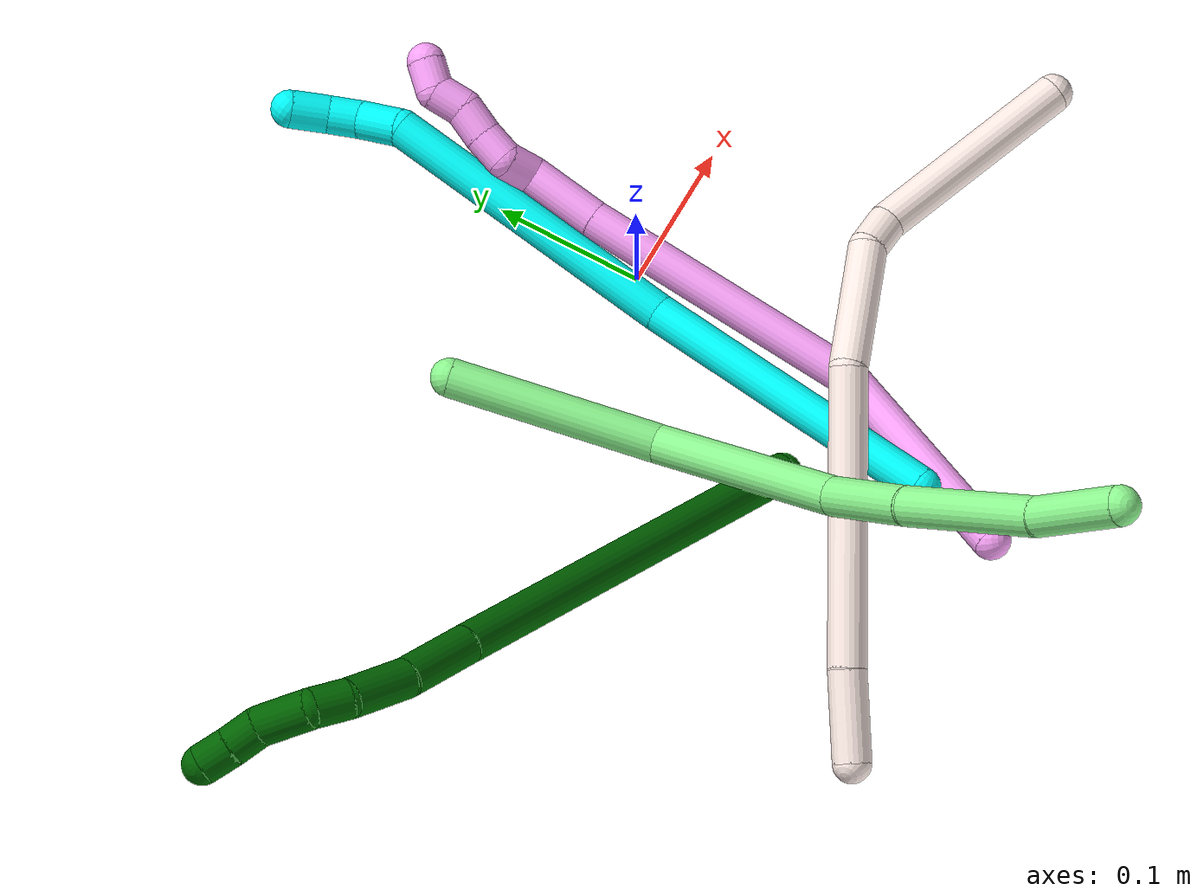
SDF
<sdf version="1.7">
 <world name="default">
  <model name="3">
   <static>0</static>
   <link name="3">
    <collision name="collision-cylinder-e_1_1_4">
     <pose>0.01929 0.104267 -0.011193 -1.67774 0.181916 -0.202357</pose>
     <geometry><cylinder><radius>0.0125</radius><length>0.213251</length></cylinder></geometry>
     <surface>
      <friction><ode><mu>1.16</mu><mu2>1.16</mu2><slip1>0</slip1><slip2>0</slip2></ode></friction>
      <contact><ode><kp>1e+06</kp><kd>1</kd><max_vel>0</max_vel><min_depth>0.001</min_depth></ode></contact>
     </surface>
    </collision>
    <visual name="visual-cylinder-e_1_1_4">
     <pose>0.01929 0.104267 -0.011193 -1.67774 0.181916 -0.202357</pose>
     <geometry><cylinder><radius>0.0125</radius><length>0.213251</length></cylinder></geometry>
     <material><ambient>0.003922 1 0.996078 1</ambient></material>
    </visual>
    <collision name="collision-cylinder-e_2_4_5">
     <pose>0.037078 0.312505 -0.025284 -1.59866 -0.014441 0.014849</pose>
     <geometry><cylinder><radius>0.0125</radius><length>0.208045</length></cylinder></geometry>
     <surface>
      <friction><ode><mu>1.16</mu><mu2>1.16</mu2><slip1>0</slip1><slip2>0</slip2></ode></friction>
      <contact><ode><kp>1e+06</kp><kd>1</kd><max_vel>0</max_vel><min_depth>0.001</min_depth></ode></contact>
     </surface>
    </collision>
    <visual name="visual-cylinder-e_2_4_5">
     <pose>0.037078 0.312505 -0.025284 -1.59866 -0.014441 0.014849</pose>
     <geometry><cylinder><radius>0.0125</radius><length>0.208045</length></cylinder></geometry>
     <material><ambient>0.003922 1 0.996078 1</ambient></material>
    </visual>
    <collision name="collision-cylinder-e_3_5_6">
     <pose>0.038965 0.430063 -0.034853 -2.02721 0.220259 -0.351298</pose>
     <geometry><cylinder><radius>0.0125</radius><length>0.031021</length></cylinder></geometry>
     <surface>
      <friction><ode><mu>1.16</mu><mu2>1.16</mu2><slip1>0</slip1><slip2>0</slip2></ode></friction>
      <contact><ode><kp>1e+06</kp><kd>1</kd><max_vel>0</max_vel><min_depth>0.001</min_depth></ode></contact>
     </surface>
    </collision>
    <visual name="visual-cylinder-e_3_5_6">
     <pose>0.038965 0.430063 -0.034853 -2.02721 0.220259 -0.351298</pose>
     <geometry><cylinder><radius>0.0125</radius><length>0.031021</length></cylinder></geometry>
     <material><ambient>0.003922 1 0.996078 1</ambient></material>
    </visual>
    <collision name="collision-cylinder-e_4_6_7">
     <pose>0.040434 0.453325 -0.046403 -2.03785 -0.175354 0.283626</pose>
     <geometry><cylinder><radius>0.0125</radius><length>0.022011</length></cylinder></geometry>
     <surface>
      <friction><ode><mu>1.16</mu><mu2>1.16</mu2><slip1>0</slip1><slip2>0</slip2></ode></friction>
      <contact><ode><kp>1e+06</kp><kd>1</kd><max_vel>0</max_vel><min_depth>0.001</min_depth></ode></contact>
     </surface>
    </collision>
    <visual name="visual-cylinder-e_4_6_7">
     <pose>0.040434 0.453325 -0.046403 -2.03785 -0.175354 0.283626</pose>
     <geometry><cylinder><radius>0.0125</radius><length>0.022011</length></cylinder></geometry>
     <material><ambient>0.003922 1 0.996078 1</ambient></material>
    </visual>
    <collision name="collision-cylinder-e_5_7_2">
     <pose>0.032891 0.473323 -0.056441 -2.03425 -0.453443 0.714346</pose>
     <geometry><cylinder><radius>0.0125</radius><length>0.025672</length></cylinder></geometry>
     <surface>
      <friction><ode><mu>1.16</mu><mu2>1.16</mu2><slip1>0</slip1><slip2>0</slip2></ode></friction>
      <contact><ode><kp>1e+06</kp><kd>1</kd><max_vel>0</max_vel><min_depth>0.001</min_depth></ode></contact>
     </surface>
    </collision>
    <visual name="visual-cylinder-e_5_7_2">
     <pose>0.032891 0.473323 -0.056441 -2.03425 -0.453443 0.714346</pose>
     <geometry><cylinder><radius>0.0125</radius><length>0.025672</length></cylinder></geometry>
     <material><ambient>0.003922 1 0.996078 1</ambient></material>
    </visual>
    <collision name="collision-sphere-2">
     <pose>0.027268 0.483645 -0.061599 0 -0 0</pose>
     <geometry><sphere><radius>0.0125</radius></sphere></geometry>
     <surface>
      <friction><ode><mu>1.16</mu><mu2>1.16</mu2><slip1>0</slip1><slip2>0</slip2></ode></friction>
      <contact><ode><kp>1e+06</kp><kd>1</kd><max_vel>0</max_vel><min_depth>0.001</min_depth></ode></contact>
     </surface>
    </collision>
    <visual name="visual-sphere-2">
     <pose>0.027268 0.483645 -0.061599 0 -0 0</pose>
     <geometry><sphere><radius>0.0125</radius></sphere></geometry>
     <material><ambient>0.003922 1 0.996078 1</ambient></material>
    </visual>
    <collision name="collision-sphere-7">
     <pose>0.038514 0.463001 -0.051282 0 -0 0</pose>
     <geometry><sphere><radius>0.0125</radius></sphere></geometry>
     <surface>
      <friction><ode><mu>1.16</mu><mu2>1.16</mu2><slip1>0</slip1><slip2>0</slip2></ode></friction>
      <contact><ode><kp>1e+06</kp><kd>1</kd><max_vel>0</max_vel><min_depth>0.001</min_depth></ode></contact>
     </surface>
    </collision>
    <visual name="visual-sphere-7">
     <pose>0.038514 0.463001 -0.051282 0 -0 0</pose>
     <geometry><sphere><radius>0.0125</radius></sphere></geometry>
     <material><ambient>0.003922 1 0.996078 1</ambient></material>
    </visual>
    <collision name="collision-sphere-6">
     <pose>0.042354 0.443649 -0.041524 0 -0 0</pose>
     <geometry><sphere><radius>0.0125</radius></sphere></geometry>
     <surface>
      <friction><ode><mu>1.16</mu><mu2>1.16</mu2><slip1>0</slip1><slip2>0</slip2></ode></friction>
      <contact><ode><kp>1e+06</kp><kd>1</kd><max_vel>0</max_vel><min_depth>0.001</min_depth></ode></contact>
     </surface>
    </collision>
    <visual name="visual-sphere-6">
     <pose>0.042354 0.443649 -0.041524 0 -0 0</pose>
     <geometry><sphere><radius>0.0125</radius></sphere></geometry>
     <material><ambient>0.003922 1 0.996078 1</ambient></material>
    </visual>
    <collision name="collision-sphere-5">
     <pose>0.035576 0.416476 -0.028182 0 -0 0</pose>
     <geometry><sphere><radius>0.0125</radius></sphere></geometry>
     <surface>
      <friction><ode><mu>1.16</mu><mu2>1.16</mu2><slip1>0</slip1><slip2>0</slip2></ode></friction>
      <contact><ode><kp>1e+06</kp><kd>1</kd><max_vel>0</max_vel><min_depth>0.001</min_depth></ode></contact>
     </surface>
    </collision>
    <visual name="visual-sphere-5">
     <pose>0.035576 0.416476 -0.028182 0 -0 0</pose>
     <geometry><sphere><radius>0.0125</radius></sphere></geometry>
     <material><ambient>0.003922 1 0.996078 1</ambient></material>
    </visual>
    <collision name="collision-sphere-1">
     <geometry><sphere><radius>0.0125</radius></sphere></geometry>
     <surface>
      <friction><ode><mu>1.16</mu><mu2>1.16</mu2><slip1>0</slip1><slip2>0</slip2></ode></friction>
      <contact><ode><kp>1e+06</kp><kd>1</kd><max_vel>0</max_vel><min_depth>0.001</min_depth></ode></contact>
     </surface>
    </collision>
    <visual name="visual-sphere-1">
     <geometry><sphere><radius>0.0125</radius></sphere></geometry>
     <material><ambient>0.003922 1 0.996078 1</ambient></material>
    </visual>
    <collision name="collision-sphere-4">
     <pose>0.03858 0.208534 -0.022386 0 -0 0</pose>
     <geometry><sphere><radius>0.0125</radius></sphere></geometry>
     <surface>
      <friction><ode><mu>1.16</mu><mu2>1.16</mu2><slip1>0</slip1><slip2>0</slip2></ode></friction>
      <contact><ode><kp>1e+06</kp><kd>1</kd><max_vel>0</max_vel><min_depth>0.001</min_depth></ode></contact>
     </surface>
    </collision>
    <visual name="visual-sphere-4">
     <pose>0.03858 0.208534 -0.022386 0 -0 0</pose>
     <geometry><sphere><radius>0.0125</radius></sphere></geometry>
     <material><ambient>0.003922 1 0.996078 1</ambient></material>
    </visual>
    <inertial>
     <pose>0.029541 0.245441 -0.022397 0 -0 0</pose>
     <mass>0.5</mass>
     <inertia>
      <ixx>0.001404</ixx>
      <ixy>0</ixy>
      <ixz>0</ixz>
      <iyy>-0.000191</iyy>
      <iyz>0</iyz>
      <izz>-0.001704</izz>
     </inertia>
    </inertial>
   </link>
   <pose>-0.053537 -0.234466 0.04389 0.112593 1.02831 -0.070481</pose>
  </model>
  <model name="4">
   <static>0</static>
   <link name="4">
    <collision name="collision-cylinder-e_1_1_4">
     <pose>0.027545 0.04529 -0.052642 -2.43113 0.377623 -0.951322</pose>
     <geometry><cylinder><radius>0.0125</radius><length>0.149413</length></cylinder></geometry>
     <surface>
      <friction><ode><mu>1.16</mu><mu2>1.16</mu2><slip1>0</slip1><slip2>0</slip2></ode></friction>
      <contact><ode><kp>1e+06</kp><kd>1</kd><max_vel>0</max_vel><min_depth>0.001</min_depth></ode></contact>
     </surface>
    </collision>
    <visual name="visual-cylinder-e_1_1_4">
     <pose>0.027545 0.04529 -0.052642 -2.43113 0.377623 -0.951322</pose>
     <geometry><cylinder><radius>0.0125</radius><length>0.149413</length></cylinder></geometry>
     <material><ambient>1 0.65098 0.996078 1</ambient></material>
    </visual>
    <collision name="collision-cylinder-e_2_4_5">
     <pose>0.051289 0.155846 -0.177103 -2.40395 -0.039154 0.101228</pose>
     <geometry><cylinder><radius>0.0125</radius><length>0.194238</length></cylinder></geometry>
     <surface>
      <friction><ode><mu>1.16</mu><mu2>1.16</mu2><slip1>0</slip1><slip2>0</slip2></ode></friction>
      <contact><ode><kp>1e+06</kp><kd>1</kd><max_vel>0</max_vel><min_depth>0.001</min_depth></ode></contact>
     </surface>
    </collision>
    <visual name="visual-cylinder-e_2_4_5">
     <pose>0.051289 0.155846 -0.177103 -2.40395 -0.039154 0.101228</pose>
     <geometry><cylinder><radius>0.0125</radius><length>0.194238</length></cylinder></geometry>
     <material><ambient>1 0.65098 0.996078 1</ambient></material>
    </visual>
    <collision name="collision-cylinder-e_3_5_6">
     <pose>0.047743 0.238784 -0.266697 -2.35914 0.010196 -0.024717</pose>
     <geometry><cylinder><radius>0.0125</radius><length>0.050132</length></cylinder></geometry>
     <surface>
      <friction><ode><mu>1.16</mu><mu2>1.16</mu2><slip1>0</slip1><slip2>0</slip2></ode></friction>
      <contact><ode><kp>1e+06</kp><kd>1</kd><max_vel>0</max_vel><min_depth>0.001</min_depth></ode></contact>
     </surface>
    </collision>
    <visual name="visual-cylinder-e_3_5_6">
     <pose>0.047743 0.238784 -0.266697 -2.35914 0.010196 -0.024717</pose>
     <geometry><cylinder><radius>0.0125</radius><length>0.050132</length></cylinder></geometry>
     <material><ambient>1 0.65098 0.996078 1</ambient></material>
    </visual>
    <collision name="collision-cylinder-e_4_6_7">
     <pose>0.042414 0.26546 -0.287997 -1.9438 -0.52376 0.748422</pose>
     <geometry><cylinder><radius>0.0125</radius><length>0.022333</length></cylinder></geometry>
     <surface>
      <friction><ode><mu>1.16</mu><mu2>1.16</mu2><slip1>0</slip1><slip2>0</slip2></ode></friction>
      <contact><ode><kp>1e+06</kp><kd>1</kd><max_vel>0</max_vel><min_depth>0.001</min_depth></ode></contact>
     </surface>
    </collision>
    <visual name="visual-cylinder-e_4_6_7">
     <pose>0.042414 0.26546 -0.287997 -1.9438 -0.52376 0.748422</pose>
     <geometry><cylinder><radius>0.0125</radius><length>0.022333</length></cylinder></geometry>
     <material><ambient>1 0.65098 0.996078 1</ambient></material>
    </visual>
    <collision name="collision-cylinder-e_5_7_8">
     <pose>0.038192 0.28279 -0.297264 -2.17473 0.133958 -0.254174</pose>
     <geometry><cylinder><radius>0.0125</radius><length>0.020412</length></cylinder></geometry>
     <surface>
      <friction><ode><mu>1.16</mu><mu2>1.16</mu2><slip1>0</slip1><slip2>0</slip2></ode></friction>
      <contact><ode><kp>1e+06</kp><kd>1</kd><max_vel>0</max_vel><min_depth>0.001</min_depth></ode></contact>
     </surface>
    </collision>
    <visual name="visual-cylinder-e_5_7_8">
     <pose>0.038192 0.28279 -0.297264 -2.17473 0.133958 -0.254174</pose>
     <geometry><cylinder><radius>0.0125</radius><length>0.020412</length></cylinder></geometry>
     <material><ambient>1 0.65098 0.996078 1</ambient></material>
    </visual>
    <collision name="collision-cylinder-e_6_8_9">
     <pose>0.04145 0.300714 -0.30809 -2.05775 0.172761 -0.285712</pose>
     <geometry><cylinder><radius>0.0125</radius><length>0.02205</length></cylinder></geometry>
     <surface>
      <friction><ode><mu>1.16</mu><mu2>1.16</mu2><slip1>0</slip1><slip2>0</slip2></ode></friction>
      <contact><ode><kp>1e+06</kp><kd>1</kd><max_vel>0</max_vel><min_depth>0.001</min_depth></ode></contact>
     </surface>
    </collision>
    <visual name="visual-cylinder-e_6_8_9">
     <pose>0.04145 0.300714 -0.30809 -2.05775 0.172761 -0.285712</pose>
     <geometry><cylinder><radius>0.0125</radius><length>0.02205</length></cylinder></geometry>
     <material><ambient>1 0.65098 0.996078 1</ambient></material>
    </visual>
    <collision name="collision-cylinder-e_7_9_10">
     <pose>0.041655 0.318184 -0.320219 -2.30094 -0.158678 0.352076</pose>
     <geometry><cylinder><radius>0.0125</radius><length>0.021398</length></cylinder></geometry>
     <surface>
      <friction><ode><mu>1.16</mu><mu2>1.16</mu2><slip1>0</slip1><slip2>0</slip2></ode></friction>
      <contact><ode><kp>1e+06</kp><kd>1</kd><max_vel>0</max_vel><min_depth>0.001</min_depth></ode></contact>
     </surface>
    </collision>
    <visual name="visual-cylinder-e_7_9_10">
     <pose>0.041655 0.318184 -0.320219 -2.30094 -0.158678 0.352076</pose>
     <geometry><cylinder><radius>0.0125</radius><length>0.021398</length></cylinder></geometry>
     <material><ambient>1 0.65098 0.996078 1</ambient></material>
    </visual>
    <collision name="collision-cylinder-e_8_10_2">
     <pose>0.044684 0.334315 -0.330383 -1.93171 0.490922 -0.695214</pose>
     <geometry><cylinder><radius>0.0125</radius><length>0.020023</length></cylinder></geometry>
     <surface>
      <friction><ode><mu>1.16</mu><mu2>1.16</mu2><slip1>0</slip1><slip2>0</slip2></ode></friction>
      <contact><ode><kp>1e+06</kp><kd>1</kd><max_vel>0</max_vel><min_depth>0.001</min_depth></ode></contact>
     </surface>
    </collision>
    <visual name="visual-cylinder-e_8_10_2">
     <pose>0.044684 0.334315 -0.330383 -1.93171 0.490922 -0.695214</pose>
     <geometry><cylinder><radius>0.0125</radius><length>0.020023</length></cylinder></geometry>
     <material><ambient>1 0.65098 0.996078 1</ambient></material>
    </visual>
    <collision name="collision-sphere-2">
     <pose>0.049404 0.342576 -0.333501 0 -0 0</pose>
     <geometry><sphere><radius>0.0125</radius></sphere></geometry>
     <surface>
      <friction><ode><mu>1.16</mu><mu2>1.16</mu2><slip1>0</slip1><slip2>0</slip2></ode></friction>
      <contact><ode><kp>1e+06</kp><kd>1</kd><max_vel>0</max_vel><min_depth>0.001</min_depth></ode></contact>
     </surface>
    </collision>
    <visual name="visual-sphere-2">
     <pose>0.049404 0.342576 -0.333501 0 -0 0</pose>
     <geometry><sphere><radius>0.0125</radius></sphere></geometry>
     <material><ambient>1 0.65098 0.996078 1</ambient></material>
    </visual>
    <collision name="collision-sphere-10">
     <pose>0.039964 0.326055 -0.327265 0 -0 0</pose>
     <geometry><sphere><radius>0.0125</radius></sphere></geometry>
     <surface>
      <friction><ode><mu>1.16</mu><mu2>1.16</mu2><slip1>0</slip1><slip2>0</slip2></ode></friction>
      <contact><ode><kp>1e+06</kp><kd>1</kd><max_vel>0</max_vel><min_depth>0.001</min_depth></ode></contact>
     </surface>
    </collision>
    <visual name="visual-sphere-10">
     <pose>0.039964 0.326055 -0.327265 0 -0 0</pose>
     <geometry><sphere><radius>0.0125</radius></sphere></geometry>
     <material><ambient>1 0.65098 0.996078 1</ambient></material>
    </visual>
    <collision name="collision-sphere-9">
     <pose>0.043345 0.310312 -0.313172 0 -0 0</pose>
     <geometry><sphere><radius>0.0125</radius></sphere></geometry>
     <surface>
      <friction><ode><mu>1.16</mu><mu2>1.16</mu2><slip1>0</slip1><slip2>0</slip2></ode></friction>
      <contact><ode><kp>1e+06</kp><kd>1</kd><max_vel>0</max_vel><min_depth>0.001</min_depth></ode></contact>
     </surface>
    </collision>
    <visual name="visual-sphere-9">
     <pose>0.043345 0.310312 -0.313172 0 -0 0</pose>
     <geometry><sphere><radius>0.0125</radius></sphere></geometry>
     <material><ambient>1 0.65098 0.996078 1</ambient></material>
    </visual>
    <collision name="collision-sphere-4">
     <pose>0.055091 0.090579 -0.105285 0 -0 0</pose>
     <geometry><sphere><radius>0.0125</radius></sphere></geometry>
     <surface>
      <friction><ode><mu>1.16</mu><mu2>1.16</mu2><slip1>0</slip1><slip2>0</slip2></ode></friction>
      <contact><ode><kp>1e+06</kp><kd>1</kd><max_vel>0</max_vel><min_depth>0.001</min_depth></ode></contact>
     </surface>
    </collision>
    <visual name="visual-sphere-4">
     <pose>0.055091 0.090579 -0.105285 0 -0 0</pose>
     <geometry><sphere><radius>0.0125</radius></sphere></geometry>
     <material><ambient>1 0.65098 0.996078 1</ambient></material>
    </visual>
    <collision name="collision-sphere-1">
     <geometry><sphere><radius>0.0125</radius></sphere></geometry>
     <surface>
      <friction><ode><mu>1.16</mu><mu2>1.16</mu2><slip1>0</slip1><slip2>0</slip2></ode></friction>
      <contact><ode><kp>1e+06</kp><kd>1</kd><max_vel>0</max_vel><min_depth>0.001</min_depth></ode></contact>
     </surface>
    </collision>
    <visual name="visual-sphere-1">
     <geometry><sphere><radius>0.0125</radius></sphere></geometry>
     <material><ambient>1 0.65098 0.996078 1</ambient></material>
    </visual>
    <collision name="collision-sphere-8">
     <pose>0.039555 0.291115 -0.303008 0 -0 0</pose>
     <geometry><sphere><radius>0.0125</radius></sphere></geometry>
     <surface>
      <friction><ode><mu>1.16</mu><mu2>1.16</mu2><slip1>0</slip1><slip2>0</slip2></ode></friction>
      <contact><ode><kp>1e+06</kp><kd>1</kd><max_vel>0</max_vel><min_depth>0.001</min_depth></ode></contact>
     </surface>
    </collision>
    <visual name="visual-sphere-8">
     <pose>0.039555 0.291115 -0.303008 0 -0 0</pose>
     <geometry><sphere><radius>0.0125</radius></sphere></geometry>
     <material><ambient>1 0.65098 0.996078 1</ambient></material>
    </visual>
    <collision name="collision-sphere-5">
     <pose>0.047487 0.221113 -0.248922 0 -0 0</pose>
     <geometry><sphere><radius>0.0125</radius></sphere></geometry>
     <surface>
      <friction><ode><mu>1.16</mu><mu2>1.16</mu2><slip1>0</slip1><slip2>0</slip2></ode></friction>
      <contact><ode><kp>1e+06</kp><kd>1</kd><max_vel>0</max_vel><min_depth>0.001</min_depth></ode></contact>
     </surface>
    </collision>
    <visual name="visual-sphere-5">
     <pose>0.047487 0.221113 -0.248922 0 -0 0</pose>
     <geometry><sphere><radius>0.0125</radius></sphere></geometry>
     <material><ambient>1 0.65098 0.996078 1</ambient></material>
    </visual>
    <collision name="collision-sphere-6">
     <pose>0.047998 0.256455 -0.284473 0 -0 0</pose>
     <geometry><sphere><radius>0.0125</radius></sphere></geometry>
     <surface>
      <friction><ode><mu>1.16</mu><mu2>1.16</mu2><slip1>0</slip1><slip2>0</slip2></ode></friction>
      <contact><ode><kp>1e+06</kp><kd>1</kd><max_vel>0</max_vel><min_depth>0.001</min_depth></ode></contact>
     </surface>
    </collision>
    <visual name="visual-sphere-6">
     <pose>0.047998 0.256455 -0.284473 0 -0 0</pose>
     <geometry><sphere><radius>0.0125</radius></sphere></geometry>
     <material><ambient>1 0.65098 0.996078 1</ambient></material>
    </visual>
    <collision name="collision-sphere-7">
     <pose>0.036829 0.274465 -0.29152 0 -0 0</pose>
     <geometry><sphere><radius>0.0125</radius></sphere></geometry>
     <surface>
      <friction><ode><mu>1.16</mu><mu2>1.16</mu2><slip1>0</slip1><slip2>0</slip2></ode></friction>
      <contact><ode><kp>1e+06</kp><kd>1</kd><max_vel>0</max_vel><min_depth>0.001</min_depth></ode></contact>
     </surface>
    </collision>
    <visual name="visual-sphere-7">
     <pose>0.036829 0.274465 -0.29152 0 -0 0</pose>
     <geometry><sphere><radius>0.0125</radius></sphere></geometry>
     <material><ambient>1 0.65098 0.996078 1</ambient></material>
    </visual>
    <inertial>
     <pose>0.041796 0.161686 -0.176792 0 -0 0</pose>
     <mass>0.5</mass>
     <inertia>
      <ixx>0.000638</ixx>
      <ixy>0</ixy>
      <ixz>0</ixz>
      <iyy>-0.00066</iyy>
      <iyz>0</iyz>
      <izz>-0.00071</izz>
     </inertia>
    </inertial>
   </link>
   <pose>-0.060341 -0.288042 0.033918 0.873805 0.446532 -0.08471</pose>
  </model>
  <model name="6">
   <static>0</static>
   <link name="6">
    <collision name="collision-cylinder-e_1_1_4">
     <pose>-0.028816 0.013575 0.149521 -0.090542 -0.189625 0.008616</pose>
     <geometry><cylinder><radius>0.0125</radius><length>0.305753</length></cylinder></geometry>
     <surface>
      <friction><ode><mu>1.16</mu><mu2>1.16</mu2><slip1>0</slip1><slip2>0</slip2></ode></friction>
      <contact><ode><kp>1e+06</kp><kd>1</kd><max_vel>0</max_vel><min_depth>0.001</min_depth></ode></contact>
     </surface>
    </collision>
    <visual name="visual-cylinder-e_1_1_4">
     <pose>-0.028816 0.013575 0.149521 -0.090542 -0.189625 0.008616</pose>
     <geometry><cylinder><radius>0.0125</radius><length>0.305753</length></cylinder></geometry>
     <material><ambient>0 0.392157 0.003922 1</ambient></material>
    </visual>
    <collision name="collision-cylinder-e_2_4_5">
     <pose>-0.063378 0.02984 0.324524 -0.105181 -0.220623 0.011661</pose>
     <geometry><cylinder><radius>0.0125</radius><length>0.052521</length></cylinder></geometry>
     <surface>
      <friction><ode><mu>1.16</mu><mu2>1.16</mu2><slip1>0</slip1><slip2>0</slip2></ode></friction>
      <contact><ode><kp>1e+06</kp><kd>1</kd><max_vel>0</max_vel><min_depth>0.001</min_depth></ode></contact>
     </surface>
    </collision>
    <visual name="visual-cylinder-e_2_4_5">
     <pose>-0.063378 0.02984 0.324524 -0.105181 -0.220623 0.011661</pose>
     <geometry><cylinder><radius>0.0125</radius><length>0.052521</length></cylinder></geometry>
     <material><ambient>0 0.392157 0.003922 1</ambient></material>
    </visual>
    <collision name="collision-cylinder-e_3_5_6">
     <pose>-0.073336 0.038237 0.37018 -0.275666 -0.19823 0.027586</pose>
     <geometry><cylinder><radius>0.0125</radius><length>0.042766</length></cylinder></geometry>
     <surface>
      <friction><ode><mu>1.16</mu><mu2>1.16</mu2><slip1>0</slip1><slip2>0</slip2></ode></friction>
      <contact><ode><kp>1e+06</kp><kd>1</kd><max_vel>0</max_vel><min_depth>0.001</min_depth></ode></contact>
     </surface>
    </collision>
    <visual name="visual-cylinder-e_3_5_6">
     <pose>-0.073336 0.038237 0.37018 -0.275666 -0.19823 0.027586</pose>
     <geometry><cylinder><radius>0.0125</radius><length>0.042766</length></cylinder></geometry>
     <material><ambient>0 0.392157 0.003922 1</ambient></material>
    </visual>
    <collision name="collision-cylinder-e_4_6_7">
     <pose>-0.081112 0.049842 0.39994 -0.55161 -0.306679 0.087427</pose>
     <geometry><cylinder><radius>0.0125</radius><length>0.023615</length></cylinder></geometry>
     <surface>
      <friction><ode><mu>1.16</mu><mu2>1.16</mu2><slip1>0</slip1><slip2>0</slip2></ode></friction>
      <contact><ode><kp>1e+06</kp><kd>1</kd><max_vel>0</max_vel><min_depth>0.001</min_depth></ode></contact>
     </surface>
    </collision>
    <visual name="visual-cylinder-e_4_6_7">
     <pose>-0.081112 0.049842 0.39994 -0.55161 -0.306679 0.087427</pose>
     <geometry><cylinder><radius>0.0125</radius><length>0.023615</length></cylinder></geometry>
     <material><ambient>0 0.392157 0.003922 1</ambient></material>
    </visual>
    <collision name="collision-cylinder-e_5_7_8">
     <pose>-0.095554 0.068227 0.414635 -1.18248 -0.678591 0.465318</pose>
     <geometry><cylinder><radius>0.0125</radius><length>0.03466</length></cylinder></geometry>
     <surface>
      <friction><ode><mu>1.16</mu><mu2>1.16</mu2><slip1>0</slip1><slip2>0</slip2></ode></friction>
      <contact><ode><kp>1e+06</kp><kd>1</kd><max_vel>0</max_vel><min_depth>0.001</min_depth></ode></contact>
     </surface>
    </collision>
    <visual name="visual-cylinder-e_5_7_8">
     <pose>-0.095554 0.068227 0.414635 -1.18248 -0.678591 0.465318</pose>
     <geometry><cylinder><radius>0.0125</radius><length>0.03466</length></cylinder></geometry>
     <material><ambient>0 0.392157 0.003922 1</ambient></material>
    </visual>
    <collision name="collision-cylinder-e_6_8_9">
     <pose>-0.114119 0.085326 0.424628 -0.756711 -0.852456 0.357142</pose>
     <geometry><cylinder><radius>0.0125</radius><length>0.020419</length></cylinder></geometry>
     <surface>
      <friction><ode><mu>1.16</mu><mu2>1.16</mu2><slip1>0</slip1><slip2>0</slip2></ode></friction>
      <contact><ode><kp>1e+06</kp><kd>1</kd><max_vel>0</max_vel><min_depth>0.001</min_depth></ode></contact>
     </surface>
    </collision>
    <visual name="visual-cylinder-e_6_8_9">
     <pose>-0.114119 0.085326 0.424628 -0.756711 -0.852456 0.357142</pose>
     <geometry><cylinder><radius>0.0125</radius><length>0.020419</length></cylinder></geometry>
     <material><ambient>0 0.392157 0.003922 1</ambient></material>
    </visual>
    <collision name="collision-cylinder-e_7_9_2">
     <pose>-0.12918 0.095066 0.434206 -0.829535 -0.815058 0.37568</pose>
     <geometry><cylinder><radius>0.0125</radius><length>0.020266</length></cylinder></geometry>
     <surface>
      <friction><ode><mu>1.16</mu><mu2>1.16</mu2><slip1>0</slip1><slip2>0</slip2></ode></friction>
      <contact><ode><kp>1e+06</kp><kd>1</kd><max_vel>0</max_vel><min_depth>0.001</min_depth></ode></contact>
     </surface>
    </collision>
    <visual name="visual-cylinder-e_7_9_2">
     <pose>-0.12918 0.095066 0.434206 -0.829535 -0.815058 0.37568</pose>
     <geometry><cylinder><radius>0.0125</radius><length>0.020266</length></cylinder></geometry>
     <material><ambient>0 0.392157 0.003922 1</ambient></material>
    </visual>
    <collision name="collision-sphere-2">
     <pose>-0.136555 0.100192 0.438899 0 -0 0</pose>
     <geometry><sphere><radius>0.0125</radius></sphere></geometry>
     <surface>
      <friction><ode><mu>1.16</mu><mu2>1.16</mu2><slip1>0</slip1><slip2>0</slip2></ode></friction>
      <contact><ode><kp>1e+06</kp><kd>1</kd><max_vel>0</max_vel><min_depth>0.001</min_depth></ode></contact>
     </surface>
    </collision>
    <visual name="visual-sphere-2">
     <pose>-0.136555 0.100192 0.438899 0 -0 0</pose>
     <geometry><sphere><radius>0.0125</radius></sphere></geometry>
     <material><ambient>0 0.392157 0.003922 1</ambient></material>
    </visual>
    <collision name="collision-sphere-9">
     <pose>-0.121805 0.089939 0.429514 0 -0 0</pose>
     <geometry><sphere><radius>0.0125</radius></sphere></geometry>
     <surface>
      <friction><ode><mu>1.16</mu><mu2>1.16</mu2><slip1>0</slip1><slip2>0</slip2></ode></friction>
      <contact><ode><kp>1e+06</kp><kd>1</kd><max_vel>0</max_vel><min_depth>0.001</min_depth></ode></contact>
     </surface>
    </collision>
    <visual name="visual-sphere-9">
     <pose>-0.121805 0.089939 0.429514 0 -0 0</pose>
     <geometry><sphere><radius>0.0125</radius></sphere></geometry>
     <material><ambient>0 0.392157 0.003922 1</ambient></material>
    </visual>
    <collision name="collision-sphere-4">
     <pose>-0.057631 0.02715 0.299042 0 -0 0</pose>
     <geometry><sphere><radius>0.0125</radius></sphere></geometry>
     <surface>
      <friction><ode><mu>1.16</mu><mu2>1.16</mu2><slip1>0</slip1><slip2>0</slip2></ode></friction>
      <contact><ode><kp>1e+06</kp><kd>1</kd><max_vel>0</max_vel><min_depth>0.001</min_depth></ode></contact>
     </surface>
    </collision>
    <visual name="visual-sphere-4">
     <pose>-0.057631 0.02715 0.299042 0 -0 0</pose>
     <geometry><sphere><radius>0.0125</radius></sphere></geometry>
     <material><ambient>0 0.392157 0.003922 1</ambient></material>
    </visual>
    <collision name="collision-sphere-1">
     <geometry><sphere><radius>0.0125</radius></sphere></geometry>
     <surface>
      <friction><ode><mu>1.16</mu><mu2>1.16</mu2><slip1>0</slip1><slip2>0</slip2></ode></friction>
      <contact><ode><kp>1e+06</kp><kd>1</kd><max_vel>0</max_vel><min_depth>0.001</min_depth></ode></contact>
     </surface>
    </collision>
    <visual name="visual-sphere-1">
     <geometry><sphere><radius>0.0125</radius></sphere></geometry>
     <material><ambient>0 0.392157 0.003922 1</ambient></material>
    </visual>
    <collision name="collision-sphere-8">
     <pose>-0.106432 0.080714 0.419743 0 -0 0</pose>
     <geometry><sphere><radius>0.0125</radius></sphere></geometry>
     <surface>
      <friction><ode><mu>1.16</mu><mu2>1.16</mu2><slip1>0</slip1><slip2>0</slip2></ode></friction>
      <contact><ode><kp>1e+06</kp><kd>1</kd><max_vel>0</max_vel><min_depth>0.001</min_depth></ode></contact>
     </surface>
    </collision>
    <visual name="visual-sphere-8">
     <pose>-0.106432 0.080714 0.419743 0 -0 0</pose>
     <geometry><sphere><radius>0.0125</radius></sphere></geometry>
     <material><ambient>0 0.392157 0.003922 1</ambient></material>
    </visual>
    <collision name="collision-sphere-5">
     <pose>-0.069125 0.03253 0.350007 0 -0 0</pose>
     <geometry><sphere><radius>0.0125</radius></sphere></geometry>
     <surface>
      <friction><ode><mu>1.16</mu><mu2>1.16</mu2><slip1>0</slip1><slip2>0</slip2></ode></friction>
      <contact><ode><kp>1e+06</kp><kd>1</kd><max_vel>0</max_vel><min_depth>0.001</min_depth></ode></contact>
     </surface>
    </collision>
    <visual name="visual-sphere-5">
     <pose>-0.069125 0.03253 0.350007 0 -0 0</pose>
     <geometry><sphere><radius>0.0125</radius></sphere></geometry>
     <material><ambient>0 0.392157 0.003922 1</ambient></material>
    </visual>
    <collision name="collision-sphere-6">
     <pose>-0.077547 0.043943 0.390353 0 -0 0</pose>
     <geometry><sphere><radius>0.0125</radius></sphere></geometry>
     <surface>
      <friction><ode><mu>1.16</mu><mu2>1.16</mu2><slip1>0</slip1><slip2>0</slip2></ode></friction>
      <contact><ode><kp>1e+06</kp><kd>1</kd><max_vel>0</max_vel><min_depth>0.001</min_depth></ode></contact>
     </surface>
    </collision>
    <visual name="visual-sphere-6">
     <pose>-0.077547 0.043943 0.390353 0 -0 0</pose>
     <geometry><sphere><radius>0.0125</radius></sphere></geometry>
     <material><ambient>0 0.392157 0.003922 1</ambient></material>
    </visual>
    <collision name="collision-sphere-7">
     <pose>-0.084676 0.055741 0.409527 0 -0 0</pose>
     <geometry><sphere><radius>0.0125</radius></sphere></geometry>
     <surface>
      <friction><ode><mu>1.16</mu><mu2>1.16</mu2><slip1>0</slip1><slip2>0</slip2></ode></friction>
      <contact><ode><kp>1e+06</kp><kd>1</kd><max_vel>0</max_vel><min_depth>0.001</min_depth></ode></contact>
     </surface>
    </collision>
    <visual name="visual-sphere-7">
     <pose>-0.084676 0.055741 0.409527 0 -0 0</pose>
     <geometry><sphere><radius>0.0125</radius></sphere></geometry>
     <material><ambient>0 0.392157 0.003922 1</ambient></material>
    </visual>
    <inertial>
     <pose>-0.050902 0.029127 0.239756 0 -0 0</pose>
     <mass>0.5</mass>
     <inertia>
      <ixx>0.002392</ixx>
      <ixy>0</ixy>
      <ixz>0</ixz>
      <iyy>0.002444</iyy>
      <iyz>0</iyz>
      <izz>0.000274</izz>
     </inertia>
    </inertial>
   </link>
   <pose>-0.075648 -0.148076 0.011498 -0.31043 -0.770222 0.144044</pose>
  </model>
  <model name="11">
   <static>0</static>
   <link name="11">
    <collision name="collision-cylinder-e_1_1_4">
     <pose>0.012704 0.016854 -0.020305 -2.44881 0.448671 -1.12747</pose>
     <geometry><cylinder><radius>0.0125</radius><length>0.058574</length></cylinder></geometry>
     <surface>
      <friction><ode><mu>1.16</mu><mu2>1.16</mu2><slip1>0</slip1><slip2>0</slip2></ode></friction>
      <contact><ode><kp>1e+06</kp><kd>1</kd><max_vel>0</max_vel><min_depth>0.001</min_depth></ode></contact>
     </surface>
    </collision>
    <visual name="visual-cylinder-e_1_1_4">
     <pose>0.012704 0.016854 -0.020305 -2.44881 0.448671 -1.12747</pose>
     <geometry><cylinder><radius>0.0125</radius><length>0.058574</length></cylinder></geometry>
     <material><ambient>1 0.933333 0.909804 1</ambient></material>
    </visual>
    <collision name="collision-cylinder-e_2_4_5">
     <pose>0.063435 0.082534 -0.111709 -2.53982 0.415257 -1.19284</pose>
     <geometry><cylinder><radius>0.0125</radius><length>0.188522</length></cylinder></geometry>
     <surface>
      <friction><ode><mu>1.16</mu><mu2>1.16</mu2><slip1>0</slip1><slip2>0</slip2></ode></friction>
      <contact><ode><kp>1e+06</kp><kd>1</kd><max_vel>0</max_vel><min_depth>0.001</min_depth></ode></contact>
     </surface>
    </collision>
    <visual name="visual-cylinder-e_2_4_5">
     <pose>0.063435 0.082534 -0.111709 -2.53982 0.415257 -1.19284</pose>
     <geometry><cylinder><radius>0.0125</radius><length>0.188522</length></cylinder></geometry>
     <material><ambient>1 0.933333 0.909804 1</ambient></material>
    </visual>
    <collision name="collision-cylinder-e_3_5_6">
     <pose>0.109249 0.144654 -0.222462 -2.81813 0.184069 -1.02962</pose>
     <geometry><cylinder><radius>0.0125</radius><length>0.085083</length></cylinder></geometry>
     <surface>
      <friction><ode><mu>1.16</mu><mu2>1.16</mu2><slip1>0</slip1><slip2>0</slip2></ode></friction>
      <contact><ode><kp>1e+06</kp><kd>1</kd><max_vel>0</max_vel><min_depth>0.001</min_depth></ode></contact>
     </surface>
    </collision>
    <visual name="visual-cylinder-e_3_5_6">
     <pose>0.109249 0.144654 -0.222462 -2.81813 0.184069 -1.02962</pose>
     <geometry><cylinder><radius>0.0125</radius><length>0.085083</length></cylinder></geometry>
     <material><ambient>1 0.933333 0.909804 1</ambient></material>
    </visual>
    <collision name="collision-cylinder-e_4_6_7">
     <pose>0.117775 0.156404 -0.275186 3.02403 0.056156 0.890569</pose>
     <geometry><cylinder><radius>0.0125</radius><length>0.026362</length></cylinder></geometry>
     <surface>
      <friction><ode><mu>1.16</mu><mu2>1.16</mu2><slip1>0</slip1><slip2>0</slip2></ode></friction>
      <contact><ode><kp>1e+06</kp><kd>1</kd><max_vel>0</max_vel><min_depth>0.001</min_depth></ode></contact>
     </surface>
    </collision>
    <visual name="visual-cylinder-e_4_6_7">
     <pose>0.117775 0.156404 -0.275186 3.02403 0.056156 0.890569</pose>
     <geometry><cylinder><radius>0.0125</radius><length>0.026362</length></cylinder></geometry>
     <material><ambient>1 0.933333 0.909804 1</ambient></material>
    </visual>
    <collision name="collision-cylinder-e_5_7_2">
     <pose>0.146545 0.130763 -0.348557 2.76143 0.407484 1.64195</pose>
     <geometry><cylinder><radius>0.0125</radius><length>0.141458</length></cylinder></geometry>
     <surface>
      <friction><ode><mu>1.16</mu><mu2>1.16</mu2><slip1>0</slip1><slip2>0</slip2></ode></friction>
      <contact><ode><kp>1e+06</kp><kd>1</kd><max_vel>0</max_vel><min_depth>0.001</min_depth></ode></contact>
     </surface>
    </collision>
    <visual name="visual-cylinder-e_5_7_2">
     <pose>0.146545 0.130763 -0.348557 2.76143 0.407484 1.64195</pose>
     <geometry><cylinder><radius>0.0125</radius><length>0.141458</length></cylinder></geometry>
     <material><ambient>1 0.933333 0.909804 1</ambient></material>
    </visual>
    <collision name="collision-sphere-2">
     <pose>0.174575 0.106666 -0.408858 0 -0 0</pose>
     <geometry><sphere><radius>0.0125</radius></sphere></geometry>
     <surface>
      <friction><ode><mu>1.16</mu><mu2>1.16</mu2><slip1>0</slip1><slip2>0</slip2></ode></friction>
      <contact><ode><kp>1e+06</kp><kd>1</kd><max_vel>0</max_vel><min_depth>0.001</min_depth></ode></contact>
     </surface>
    </collision>
    <visual name="visual-sphere-2">
     <pose>0.174575 0.106666 -0.408858 0 -0 0</pose>
     <geometry><sphere><radius>0.0125</radius></sphere></geometry>
     <material><ambient>1 0.933333 0.909804 1</ambient></material>
    </visual>
    <collision name="collision-sphere-7">
     <pose>0.118515 0.15486 -0.288256 0 -0 0</pose>
     <geometry><sphere><radius>0.0125</radius></sphere></geometry>
     <surface>
      <friction><ode><mu>1.16</mu><mu2>1.16</mu2><slip1>0</slip1><slip2>0</slip2></ode></friction>
      <contact><ode><kp>1e+06</kp><kd>1</kd><max_vel>0</max_vel><min_depth>0.001</min_depth></ode></contact>
     </surface>
    </collision>
    <visual name="visual-sphere-7">
     <pose>0.118515 0.15486 -0.288256 0 -0 0</pose>
     <geometry><sphere><radius>0.0125</radius></sphere></geometry>
     <material><ambient>1 0.933333 0.909804 1</ambient></material>
    </visual>
    <collision name="collision-sphere-6">
     <pose>0.117035 0.157947 -0.262116 0 -0 0</pose>
     <geometry><sphere><radius>0.0125</radius></sphere></geometry>
     <surface>
      <friction><ode><mu>1.16</mu><mu2>1.16</mu2><slip1>0</slip1><slip2>0</slip2></ode></friction>
      <contact><ode><kp>1e+06</kp><kd>1</kd><max_vel>0</max_vel><min_depth>0.001</min_depth></ode></contact>
     </surface>
    </collision>
    <visual name="visual-sphere-6">
     <pose>0.117035 0.157947 -0.262116 0 -0 0</pose>
     <geometry><sphere><radius>0.0125</radius></sphere></geometry>
     <material><ambient>1 0.933333 0.909804 1</ambient></material>
    </visual>
    <collision name="collision-sphere-5">
     <pose>0.101462 0.13136 -0.182808 0 -0 0</pose>
     <geometry><sphere><radius>0.0125</radius></sphere></geometry>
     <surface>
      <friction><ode><mu>1.16</mu><mu2>1.16</mu2><slip1>0</slip1><slip2>0</slip2></ode></friction>
      <contact><ode><kp>1e+06</kp><kd>1</kd><max_vel>0</max_vel><min_depth>0.001</min_depth></ode></contact>
     </surface>
    </collision>
    <visual name="visual-sphere-5">
     <pose>0.101462 0.13136 -0.182808 0 -0 0</pose>
     <geometry><sphere><radius>0.0125</radius></sphere></geometry>
     <material><ambient>1 0.933333 0.909804 1</ambient></material>
    </visual>
    <collision name="collision-sphere-1">
     <geometry><sphere><radius>0.0125</radius></sphere></geometry>
     <surface>
      <friction><ode><mu>1.16</mu><mu2>1.16</mu2><slip1>0</slip1><slip2>0</slip2></ode></friction>
      <contact><ode><kp>1e+06</kp><kd>1</kd><max_vel>0</max_vel><min_depth>0.001</min_depth></ode></contact>
     </surface>
    </collision>
    <visual name="visual-sphere-1">
     <geometry><sphere><radius>0.0125</radius></sphere></geometry>
     <material><ambient>1 0.933333 0.909804 1</ambient></material>
    </visual>
    <collision name="collision-sphere-4">
     <pose>0.025408 0.033708 -0.04061 0 -0 0</pose>
     <geometry><sphere><radius>0.0125</radius></sphere></geometry>
     <surface>
      <friction><ode><mu>1.16</mu><mu2>1.16</mu2><slip1>0</slip1><slip2>0</slip2></ode></friction>
      <contact><ode><kp>1e+06</kp><kd>1</kd><max_vel>0</max_vel><min_depth>0.001</min_depth></ode></contact>
     </surface>
    </collision>
    <visual name="visual-sphere-4">
     <pose>0.025408 0.033708 -0.04061 0 -0 0</pose>
     <geometry><sphere><radius>0.0125</radius></sphere></geometry>
     <material><ambient>1 0.933333 0.909804 1</ambient></material>
    </visual>
    <inertial>
     <pose>0.091666 0.10295 -0.195475 0 -0 0</pose>
     <mass>0.5</mass>
     <inertia>
      <ixx>-9.4e-05</ixx>
      <ixy>0</ixy>
      <ixz>0</ixz>
      <iyy>-0.000339</iyy>
      <iyz>0</iyz>
      <izz>-0.000613</izz>
     </inertia>
    </inertial>
   </link>
   <pose>-0.225783 -0.279952 0.012553 0.731037 -1.11342 -0.672319</pose>
  </model>
  <model name="13">
   <static>0</static>
   <link name="13">
    <collision name="collision-cylinder-e_1_1_4">
     <pose>-0.011035 0.001944 -0.028104 -3.07253 -0.37334 2.7798</pose>
     <geometry><cylinder><radius>0.0125</radius><length>0.06051</length></cylinder></geometry>
     <surface>
      <friction><ode><mu>1.16</mu><mu2>1.16</mu2><slip1>0</slip1><slip2>0</slip2></ode></friction>
      <contact><ode><kp>1e+06</kp><kd>1</kd><max_vel>0</max_vel><min_depth>0.001</min_depth></ode></contact>
     </surface>
    </collision>
    <visual name="visual-cylinder-e_1_1_4">
     <pose>-0.011035 0.001944 -0.028104 -3.07253 -0.37334 2.7798</pose>
     <geometry><cylinder><radius>0.0125</radius><length>0.06051</length></cylinder></geometry>
     <material><ambient>0.564706 0.984314 0.572549 1</ambient></material>
    </visual>
    <collision name="collision-cylinder-e_2_4_5">
     <pose>-0.035482 0.014249 -0.101779 -2.91804 -0.279472 1.79452</pose>
     <geometry><cylinder><radius>0.0125</radius><length>0.097242</length></cylinder></geometry>
     <surface>
      <friction><ode><mu>1.16</mu><mu2>1.16</mu2><slip1>0</slip1><slip2>0</slip2></ode></friction>
      <contact><ode><kp>1e+06</kp><kd>1</kd><max_vel>0</max_vel><min_depth>0.001</min_depth></ode></contact>
     </surface>
    </collision>
    <visual name="visual-cylinder-e_2_4_5">
     <pose>-0.035482 0.014249 -0.101779 -2.91804 -0.279472 1.79452</pose>
     <geometry><cylinder><radius>0.0125</radius><length>0.097242</length></cylinder></geometry>
     <material><ambient>0.564706 0.984314 0.572549 1</ambient></material>
    </visual>
    <collision name="collision-cylinder-e_3_5_6">
     <pose>-0.052989 0.029837 -0.178823 -2.977 -0.127652 1.31843</pose>
     <geometry><cylinder><radius>0.0125</radius><length>0.064331</length></cylinder></geometry>
     <surface>
      <friction><ode><mu>1.16</mu><mu2>1.16</mu2><slip1>0</slip1><slip2>0</slip2></ode></friction>
      <contact><ode><kp>1e+06</kp><kd>1</kd><max_vel>0</max_vel><min_depth>0.001</min_depth></ode></contact>
     </surface>
    </collision>
    <visual name="visual-cylinder-e_3_5_6">
     <pose>-0.052989 0.029837 -0.178823 -2.977 -0.127652 1.31843</pose>
     <geometry><cylinder><radius>0.0125</radius><length>0.064331</length></cylinder></geometry>
     <material><ambient>0.564706 0.984314 0.572549 1</ambient></material>
    </visual>
    <collision name="collision-cylinder-e_4_6_7">
     <pose>-0.071201 0.060599 -0.274474 -2.76293 -0.20162 0.971381</pose>
     <geometry><cylinder><radius>0.0125</radius><length>0.140997</length></cylinder></geometry>
     <surface>
      <friction><ode><mu>1.16</mu><mu2>1.16</mu2><slip1>0</slip1><slip2>0</slip2></ode></friction>
      <contact><ode><kp>1e+06</kp><kd>1</kd><max_vel>0</max_vel><min_depth>0.001</min_depth></ode></contact>
     </surface>
    </collision>
    <visual name="visual-cylinder-e_4_6_7">
     <pose>-0.071201 0.060599 -0.274474 -2.76293 -0.20162 0.971381</pose>
     <geometry><cylinder><radius>0.0125</radius><length>0.140997</length></cylinder></geometry>
     <material><ambient>0.564706 0.984314 0.572549 1</ambient></material>
    </visual>
    <collision name="collision-cylinder-e_5_7_2">
     <pose>-0.124398 0.130313 -0.373403 -2.23729 -0.607508 1.1462</pose>
     <geometry><cylinder><radius>0.0125</radius><length>0.13692</length></cylinder></geometry>
     <surface>
      <friction><ode><mu>1.16</mu><mu2>1.16</mu2><slip1>0</slip1><slip2>0</slip2></ode></friction>
      <contact><ode><kp>1e+06</kp><kd>1</kd><max_vel>0</max_vel><min_depth>0.001</min_depth></ode></contact>
     </surface>
    </collision>
    <visual name="visual-cylinder-e_5_7_2">
     <pose>-0.124398 0.130313 -0.373403 -2.23729 -0.607508 1.1462</pose>
     <geometry><cylinder><radius>0.0125</radius><length>0.13692</length></cylinder></geometry>
     <material><ambient>0.564706 0.984314 0.572549 1</ambient></material>
    </visual>
    <collision name="collision-sphere-2">
     <pose>-0.163476 0.174494 -0.408154 0 -0 0</pose>
     <geometry><sphere><radius>0.0125</radius></sphere></geometry>
     <surface>
      <friction><ode><mu>1.16</mu><mu2>1.16</mu2><slip1>0</slip1><slip2>0</slip2></ode></friction>
      <contact><ode><kp>1e+06</kp><kd>1</kd><max_vel>0</max_vel><min_depth>0.001</min_depth></ode></contact>
     </surface>
    </collision>
    <visual name="visual-sphere-2">
     <pose>-0.163476 0.174494 -0.408154 0 -0 0</pose>
     <geometry><sphere><radius>0.0125</radius></sphere></geometry>
     <material><ambient>0.564706 0.984314 0.572549 1</ambient></material>
    </visual>
    <collision name="collision-sphere-7">
     <pose>-0.085319 0.086132 -0.338651 0 -0 0</pose>
     <geometry><sphere><radius>0.0125</radius></sphere></geometry>
     <surface>
      <friction><ode><mu>1.16</mu><mu2>1.16</mu2><slip1>0</slip1><slip2>0</slip2></ode></friction>
      <contact><ode><kp>1e+06</kp><kd>1</kd><max_vel>0</max_vel><min_depth>0.001</min_depth></ode></contact>
     </surface>
    </collision>
    <visual name="visual-sphere-7">
     <pose>-0.085319 0.086132 -0.338651 0 -0 0</pose>
     <geometry><sphere><radius>0.0125</radius></sphere></geometry>
     <material><ambient>0.564706 0.984314 0.572549 1</ambient></material>
    </visual>
    <collision name="collision-sphere-6">
     <pose>-0.057083 0.035065 -0.210296 0 -0 0</pose>
     <geometry><sphere><radius>0.0125</radius></sphere></geometry>
     <surface>
      <friction><ode><mu>1.16</mu><mu2>1.16</mu2><slip1>0</slip1><slip2>0</slip2></ode></friction>
      <contact><ode><kp>1e+06</kp><kd>1</kd><max_vel>0</max_vel><min_depth>0.001</min_depth></ode></contact>
     </surface>
    </collision>
    <visual name="visual-sphere-6">
     <pose>-0.057083 0.035065 -0.210296 0 -0 0</pose>
     <geometry><sphere><radius>0.0125</radius></sphere></geometry>
     <material><ambient>0.564706 0.984314 0.572549 1</ambient></material>
    </visual>
    <collision name="collision-sphere-5">
     <pose>-0.048894 0.024609 -0.147351 0 -0 0</pose>
     <geometry><sphere><radius>0.0125</radius></sphere></geometry>
     <surface>
      <friction><ode><mu>1.16</mu><mu2>1.16</mu2><slip1>0</slip1><slip2>0</slip2></ode></friction>
      <contact><ode><kp>1e+06</kp><kd>1</kd><max_vel>0</max_vel><min_depth>0.001</min_depth></ode></contact>
     </surface>
    </collision>
    <visual name="visual-sphere-5">
     <pose>-0.048894 0.024609 -0.147351 0 -0 0</pose>
     <geometry><sphere><radius>0.0125</radius></sphere></geometry>
     <material><ambient>0.564706 0.984314 0.572549 1</ambient></material>
    </visual>
    <collision name="collision-sphere-1">
     <geometry><sphere><radius>0.0125</radius></sphere></geometry>
     <surface>
      <friction><ode><mu>1.16</mu><mu2>1.16</mu2><slip1>0</slip1><slip2>0</slip2></ode></friction>
      <contact><ode><kp>1e+06</kp><kd>1</kd><max_vel>0</max_vel><min_depth>0.001</min_depth></ode></contact>
     </surface>
    </collision>
    <visual name="visual-sphere-1">
     <geometry><sphere><radius>0.0125</radius></sphere></geometry>
     <material><ambient>0.564706 0.984314 0.572549 1</ambient></material>
    </visual>
    <collision name="collision-sphere-4">
     <pose>-0.02207 0.003888 -0.056207 0 -0 0</pose>
     <geometry><sphere><radius>0.0125</radius></sphere></geometry>
     <surface>
      <friction><ode><mu>1.16</mu><mu2>1.16</mu2><slip1>0</slip1><slip2>0</slip2></ode></friction>
      <contact><ode><kp>1e+06</kp><kd>1</kd><max_vel>0</max_vel><min_depth>0.001</min_depth></ode></contact>
     </surface>
    </collision>
    <visual name="visual-sphere-4">
     <pose>-0.02207 0.003888 -0.056207 0 -0 0</pose>
     <geometry><sphere><radius>0.0125</radius></sphere></geometry>
     <material><ambient>0.564706 0.984314 0.572549 1</ambient></material>
    </visual>
    <inertial>
     <pose>-0.069197 0.059619 -0.225856 0 -0 0</pose>
     <mass>0.5</mass>
     <inertia>
      <ixx>0.000628</ixx>
      <ixy>0</ixy>
      <ixz>0</ixz>
      <iyy>0.000436</iyy>
      <iyz>0</iyz>
      <izz>-7.7e-05</izz>
     </inertia>
    </inertial>
   </link>
   <pose>-0.095014 -0.378389 0.275559 0.606881 0.227784 -0.392659</pose>
  </model>
 </world>
</sdf>
